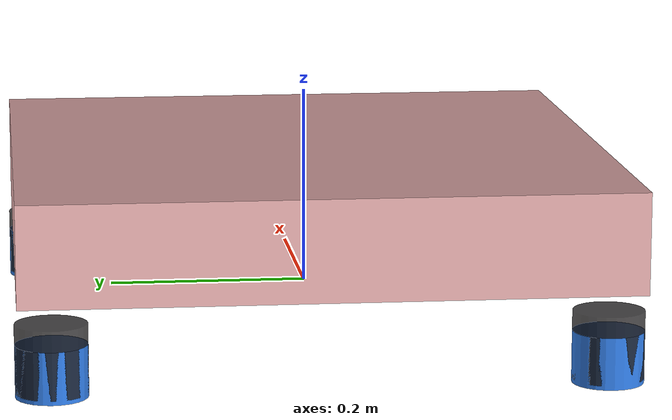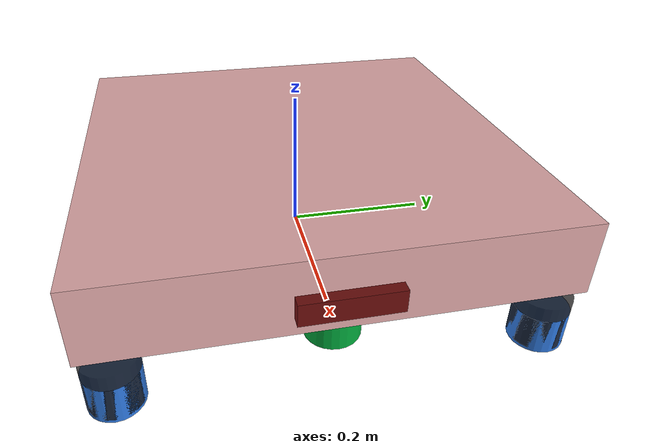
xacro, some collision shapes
<?xml version="1.0"?>
<robot name="abu_bot" xmlns:xacro="http://ros.org/wiki/xacro">
    <!-- ROBOT -->
    <xacro:include filename="$(find abu_description)/urdf/base.urdf.xacro" />
    <xacro:include filename="$(find abu_description)/urdf/properties.urdf.xacro" />
    <xacro:include filename="$(find abu_description)/urdf/sensors/imu.urdf.xacro" />
    <xacro:include filename="$(find abu_description)/urdf/robot_control.urdf.xacro" />
    <xacro:include filename="$(find abu_description)/urdf/sensors/depth_sensor.urdf.xacro" />
    <xacro:include filename="$(find abu_description)/urdf/sensors/generic_laser.urdf.xacro" />

    <xacro:base
        length="${base_length}"
        width="${base_width}"
        height="${base_height}"
        mass="${base_mass}"
        wheel_radius="${wheel_dir_radius}"
        wheel_pos_z="${wheel_pos_z}"
    />

    <xacro:imu/>

    <xacro:generic_laser>
        <xacro:insert_block name="laser_pose" />
    </xacro:generic_laser>

    <xacro:depth_sensor>
        <xacro:insert_block name="depth_sensor_pose" />
    </xacro:depth_sensor>

    <xacro:robot_controller/>

    <!-- DRIVE -->
    <xacro:include filename="$(find abu_description)/urdf/drive.urdf.xacro" />
    <xacro:include filename="$(find abu_description)/urdf/swerve_wheel/wheel.urdf.xacro" />
    <xacro:include filename="$(find abu_description)/urdf/swerve_wheel/wheel.transmission.xacro" />
    <xacro:include filename="$(find abu_description)/urdf/swerve_wheel/steering.transmission.xacro" />

    <xacro:swerve_wheel
        side="front_left"
        rot_radius="${wheel_rot_radius}"
        rot_width="${wheel_rot_width}"
        dir_radius="${wheel_dir_radius}"
        dir_width="${wheel_dir_width}"
        pos_x="${wheel_pos_x}"
        pos_y="${wheel_pos_y}"
        pos_z="${wheel_pos_z}"
        dir_pos_z="${wheel_dir_pos_z}"
        mass="${wheel_mass}"
    />

    <xacro:swerve_wheel
        side="front_right"
        rot_radius="${wheel_rot_radius}"
        rot_width="${wheel_rot_width}"
        dir_radius="${wheel_dir_radius}"
        dir_width="${wheel_dir_width}"
        pos_x="${wheel_pos_x}"
        pos_y="${-wheel_pos_y}"
        pos_z="${wheel_pos_z}"
        dir_pos_z="${wheel_dir_pos_z}"
        mass="${wheel_mass}"
    />
    <xacro:swerve_wheel
        side="rear_left"
        rot_radius="${wheel_rot_radius}"
        rot_width="${wheel_rot_width}"
        dir_radius="${wheel_dir_radius}"
        dir_width="${wheel_dir_width}"
        pos_x="${-wheel_pos_x}"
        pos_y="${wheel_pos_y}"
        pos_z="${wheel_pos_z}"
        dir_pos_z="${wheel_dir_pos_z}"
        mass="${wheel_mass}"
    />

    <xacro:swerve_wheel
        side="rear_right"
        rot_radius="${wheel_rot_radius}"
        rot_width="${wheel_rot_width}"
        dir_radius="${wheel_dir_radius}"
        dir_width="${wheel_dir_width}"
        pos_x="${-wheel_pos_x}"
        pos_y="${-wheel_pos_y}"
        pos_z="${wheel_pos_z}"
        dir_pos_z="${wheel_dir_pos_z}"
        mass="${wheel_mass}"
    />

    <ros2_control name="swerve_robot_gazebo_system" type="system">
        <hardware>
            <plugin>gazebo_ros2_control/GazeboSystem</plugin>
        </hardware>
        <xacro:wheel_transmission side="front_right" />
        <xacro:wheel_transmission side="front_left" />
        <xacro:wheel_transmission side="rear_left" />
        <xacro:wheel_transmission side="rear_right" />
        <xacro:steer_transmission side="front_right" />
        <xacro:steer_transmission side="front_left" />
        <xacro:steer_transmission side="rear_left" />
        <xacro:steer_transmission side="rear_right" />
    </ros2_control>

    <xacro:drive_controller/>

    <!-- TELESCOPE -->

    <!-- GRIPPER -->

</robot>

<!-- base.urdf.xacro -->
<robot xmlns:xacro="http://ros.org/wiki/xacro">
    <xacro:macro name="base" params="length width height mass wheel_radius wheel_pos_z">
        <link name="base_footprint"/>

        <link name="base_link">
        <visual>
            <origin xyz="0 0 0.01" rpy="0 0 ${-pi/2}"/>
            <geometry>
                <box size="${length} ${width} ${height}"/>
            </geometry>
            <material name="yellow">
            <color rgba="0.8784 0.6627 0.6627 1.0"/>
            </material>
        </visual>

        <collision>
            <origin xyz="0 0 0.1" rpy="0 0 ${-pi/2}"/>
            <geometry>
                <box size="${length} ${width} ${height}"/>
            </geometry>
        </collision>

        <inertial>
            <origin xyz="0 0 0" rpy="0 0 0"/>
            <mass value="${mass}"/>
            <inertia ixx="${(1/12) * mass * ((width  * width)  + (height * height))}" ixy="0.0" ixz="0.0"
                    iyy="${(1/12) * mass * ((length * length) + (height * height))}" iyz="0.0"
                    izz="${(1/12) * mass * ((length * length) + (width  * width))}"/>
        </inertial>
        </link>

        <gazebo reference="base_link">
        <visual>
            <material>
            <ambient>0.8392 0.6314 0.0 1.0</ambient>
            <diffuse>0.8392 0.6314 0.0 1.0</diffuse>
            <specular>0.99 0.99 0.99 1.0</specular>
            <emissive>0.0 0.0 0.0 0.0</emissive>
            </material>
        </visual>
        </gazebo>

        <joint name="base_to_footprint" type="fixed">
        <parent link="base_footprint"/>
        <child link="base_link"/>
        <origin xyz="0 0 ${wheel_radius - wheel_pos_z}" rpy="0 0 0"/>
        </joint>
    </xacro:macro>
</robot>

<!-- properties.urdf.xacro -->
<robot xmlns:xacro="http://ros.org/wiki/xacro">
    <xacro:property name="base_length" value="0.6" />
    <xacro:property name="base_width" value="0.6" />
    <xacro:property name="base_height" value="0.1" />
    <xacro:property name="base_mass" value="10" />

    <xacro:property name="wheel_dir_radius" value="0.035" />
    <xacro:property name="wheel_dir_width" value="0.051" />
    <xacro:property name="wheel_rot_radius" value="0.035" />
    <xacro:property name="wheel_rot_width" value="0.067" />
    <xacro:property name="wheel_pos_x" value="0.2675" />
    <xacro:property name="wheel_pos_y" value="0.2675" />
    <xacro:property name="wheel_pos_z" value="-0.05" />
    <xacro:property name="wheel_dir_pos_z" value="-0.056" />
    <xacro:property name="wheel_mass" value="0.5" />
    <xacro:property name="wheel_torque" value="20" />

    <xacro:property name="silder_1_length" value="0.505" />
    <xacro:property name="silder_1_width" value="0.035" />
    <xacro:property name="silder_1_height" value="0.035" />
    <xacro:property name="silder_1_pos_x" value="-0.3" />
    <xacro:property name="silder_1_pos_y" value="0" />
    <xacro:property name="silder_1_pos_z" value="0.04" />
    <xacro:property name="silder_1_mass" value="0.1" />
    <xacro:property name="silder_2_length" value="0.035" />
    <xacro:property name="silder_2_width" value="0.03" />
    <xacro:property name="silder_2_height" value="0.03" />
    <xacro:property name="silder_2_pos_x" value="0.24" />
    <xacro:property name="silder_2_pos_y" value="0" />
    <xacro:property name="silder_2_pos_z" value="0" />
    <xacro:property name="silder_2_mass" value="0.1" />
    <xacro:property name="silder_wrist_length" value="0.11" />
    <xacro:property name="silder_wrist_width" value="0.085" />
    <xacro:property name="silder_wrist_height" value="0.085" />
    <xacro:property name="silder_wrist_pos_x" value="0.25" />
    <xacro:property name="silder_wrist_pos_y" value="0" />
    <xacro:property name="silder_wrist_pos_z" value="0" />
    <xacro:property name="silder_wrist_mass" value="0.1" />
    <xacro:property name="silder_hand_length" value="0.22" />
    <xacro:property name="silder_hand_width" value="0.22" />
    <xacro:property name="silder_hand_height" value="0.125" />
    <xacro:property name="silder_hand_pos_x" value="0.004" />
    <xacro:property name="silder_hand_pos_y" value="-0.022" />
    <xacro:property name="silder_hand_pos_z" value="0.03" />
    <xacro:property name="silder_hand_mass" value="0.1" />

    <xacro:property name="laser_pose">
        <origin xyz="0.232 0 -0.055" rpy="0 0 0"/>
    </xacro:property>

    <xacro:property name="depth_sensor_pose">
        <origin xyz="0.3 0 0" rpy="0 0 0"/>
    </xacro:property>
</robot>

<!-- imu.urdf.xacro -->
<robot xmlns:xacro="http://ros.org/wiki/xacro">
    <xacro:macro name="imu">
        <link name="imu_link"/>

        <joint name="imu_to_base_link" type="fixed">
        <parent link="base_link"/>
        <child link="imu_link"/>
        <origin xyz="0 0 0" rpy="0 0 0"/>
        </joint>

        <gazebo reference="imu_link">
        <gravity>true</gravity>
        <sensor name="imu_sensor" type="imu">
        <always_on>true</always_on>
        <update_rate>20</update_rate>
        <visualize>true</visualize>
        <topic>__default_topic__</topic>
        <plugin filename="libgazebo_ros_imu_sensor.so" name="imu_plugin">
            <ros>
                <remapping>~/out:=imu/data</remapping>
            </ros>
            <topicName>imu/data</topicName>
            <bodyName>imu_link</bodyName>
            <updateRateHZ>10.0</updateRateHZ>
            <gaussianNoise>0.0</gaussianNoise>
            <xyzOffset>0 0 0</xyzOffset>
            <rpyOffset>0 0 0</rpyOffset>
            <frameName>imu_link</frameName>
            <initialOrientationAsReference>false</initialOrientationAsReference>
        </plugin>
        <pose>0 0 0 0 0 0</pose>
        </sensor>
        </gazebo>
    </xacro:macro>
</robot>

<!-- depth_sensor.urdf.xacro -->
<robot xmlns:xacro="http://ros.org/wiki/xacro">
    <xacro:property name="M_PI" value="3.1415926535897931" />
    <xacro:macro name="depth_sensor" params="*origin">
        <link name="camera_link">
        <visual>
            <origin xyz="0 0 0" rpy="0 0 0"/>
            <geometry>
            <box size="0.030 0.124 0.030"/>
            </geometry>
            <material name="red">
            <color rgba="0.416 0.051 0.047 1.0"/>
            </material>
        </visual>

        <collision>
            <origin xyz="0 0 0" rpy="0 0 0"/>
            <geometry>
            <box size="0.030 0.124 0.030"/>
            </geometry>
        </collision>

        <inertial>
            <origin xyz="0 0 0" rpy="0 0 0"/>
            <mass value="0.135"/>
            <inertia ixx="${(1/12) * 0.135 * ((0.124  * 0.124)  + (0.030 * 0.030))}" ixy="0.0" ixz="0.0"
                    iyy="${(1/12) * 0.135 * ((0.030 * 0.030) + (0.030 * 0.030))}" iyz="0.0"
                    izz="${(1/12) * 0.135 * ((0.030 * 0.030) + (0.124  * 0.124))}"/>
        </inertial>
        </link>

        <gazebo reference="camera_link">
        <visual>
            <material>
            <ambient>0.416 0.051 0.047 1.0</ambient>
            <diffuse>0.416 0.051 0.047 1.0</diffuse>
            <specular>0.416 0.051 0.047 1.0</specular>
            <emissive>0.416 0.051 0.047 1.0</emissive>
            </material>
        </visual>
        </gazebo>rgb(213,28,40)

        <joint name="camera_to_base_link" type="fixed">
        <parent link="base_link"/>
        <child link="camera_link"/>
        <xacro:insert_block name="origin" />
        </joint>

        <link name="camera_depth_link"/>
        <joint name="camera_depth_joint" type="fixed">
        <origin xyz="0 0 0" rpy="-1.57 0 -1.57"/>
        <parent link="camera_link"/>
        <child link="camera_depth_link"/>
        </joint>

        <!-- https://github.com/ros-simulation/gazebo_ros_pkgs/wiki/ROS-2-Migration:-Camera#gazebo_ros_camera -->
        <gazebo reference="camera_link">
        <sensor name="camera" type="depth">
            <always_on>true</always_on>
            <update_rate>30.0</update_rate>
            <camera name="camera">
            <horizontal_fov>1.50098</horizontal_fov>
            <image>
                <width>640</width>
                <height>480</height>
                <format>R8G8B8</format>
            </image>
            </camera>
            <plugin name="camera_controller" filename="libgazebo_ros_camera.so">
            <ros>
                <remapping>/camera/camera_info:=/camera/color/camera_info</remapping>
                <remapping>/camera/image_raw:=/camera/color/image_raw</remapping>
                <remapping>/camera/points:=/camera/depth/color/points</remapping>
                <remapping>/camera/depth/image_raw:=/camera/depth/image_rect_raw</remapping>
            </ros>
            <min_depth>0.015</min_depth>
            <max_depth>3.0</max_depth>
            <hack_baseline>0.07</hack_baseline>
            <frame_name>camera_depth_link</frame_name>
            <distortion_k1>0.00000001</distortion_k1>
            <distortion_k2>0.00000001</distortion_k2>
            <distortion_k3>0.00000001</distortion_k3>
            <distortion_t1>0.00000001</distortion_t1>
            <distortion_t2>0.00000001</distortion_t2>
            </plugin>
        </sensor>

        </gazebo>
    </xacro:macro>
</robot>

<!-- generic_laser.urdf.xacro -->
<robot xmlns:xacro="http://ros.org/wiki/xacro">
    <xacro:include filename="$(find abu_description)/urdf/sensors/laser.urdf.xacro" />

    <xacro:macro name="generic_laser" params="*origin">
        <xacro:laser
        update_rate="10"
        ray_count="360"
        min_angle="-3.1416"
        max_angle="3.1416"
        min_range="0.08"
        max_range="12.0"
        frame_id="laser"
        topic_name="scan"
        >
        <xacro:insert_block name="origin" />
        </xacro:laser>
    </xacro:macro>

    <xacro:macro name="generic_base_laser" params="*origin">
        <xacro:laser
        update_rate="10"
        ray_count="360"
        min_angle="-3.1416"
        max_angle="3.1416"
        min_range="0.21"
        max_range="5.5"
        frame_id="base_laser"
        topic_name="base/scan"
        >
        <xacro:insert_block name="origin" />
        </xacro:laser>
    </xacro:macro>
</robot>

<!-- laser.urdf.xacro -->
<robot xmlns:xacro="http://ros.org/wiki/xacro">
    <xacro:property name="M_PI" value="3.1415926535897931" />
    <xacro:macro name="laser" params="*origin update_rate ray_count min_angle max_angle min_range max_range frame_id topic_name">
        <link name="${frame_id}">
        <visual>
            <origin xyz="0 0 -0.01" rpy="0 0 ${pi/2}"/>
            <geometry>
                <mesh filename="file://$(find abu_description)/urdf/model/rplidar.dae" scale="1 1 1"/>
            </geometry>
            <material name="green">
                <color rgba="0.003 0.639 0.223 1.0"/>
            </material>
        </visual>
        <collision>
            <origin xyz="0 0 -0.025" rpy="0 0 0"/>
            <geometry>
            <cylinder radius="0.0375" length="0.05"/>
            </geometry>
        </collision>

        <inertial>
            <origin xyz="0 0 0" rpy="0 0 0"/>
            <mass value="0.1"/>
            <inertia ixx="${(2/5) * 0.1 * (0.0375 * 0.0375)}" ixy="0" ixz="0"
                    iyy="${(2/5) * 0.1 * (0.0375 * 0.0375)}" iyz="0"
                    izz="${(2/5) * 0.1 * (0.0375 * 0.0375)}" />
        </inertial>
        </link>

        <gazebo reference="${frame_id}">
        <visual>
            <material>
            <ambient>0.003 0.639 0.223 1.0</ambient>
            <diffuse>0.003 0.639 0.223 1.0</diffuse>
            <specular>0.003 0.639 0.223 1.0</specular>
            <emissive>0.0 0.0 0.0 0.0</emissive>
            </material>
        </visual>
        </gazebo>

        <joint name="${frame_id}_to_base_link" type="fixed">
        <parent link="base_link"/>
        <child link="${frame_id}"/>
        <xacro:insert_block name="origin" />
        </joint>

        <gazebo reference="${frame_id}">
        <sensor type="ray" name="${frame_id}_head_hokuyo_sensor">
            <always_on>true</always_on>
            <update_rate>${update_rate}</update_rate>
            <pose>0 0 0 0 0 0</pose>
            <visualize>false</visualize>
            <ray>
            <scan>
                <horizontal>
                <samples>${ray_count}</samples>
                <resolution>1</resolution>
                <min_angle>${min_angle}</min_angle>
                <max_angle>${max_angle}</max_angle>
                </horizontal>
            </scan>
            <range>
                <min>${min_range}</min>
                <max>${max_range}</max>
                <resolution>0.01</resolution>
            </range>
            </ray>
            <plugin name="${frame_id}_gazebo_ros_head_hokuyo_controller" filename="libgazebo_ros_ray_sensor.so">
            <ros>
                <remapping>~/out:=${topic_name}</remapping>
            </ros>
            <output_type>sensor_msgs/LaserScan</output_type>
            <alwaysOn>true</alwaysOn>
            <updateRate>${update_rate}</updateRate>
            <topicName>${topic_name}</topicName>
            <frame_name>${frame_id}</frame_name>
            <output_type>sensor_msgs/LaserScan</output_type>
            </plugin>
        </sensor>
        </gazebo>
    </xacro:macro>
</robot>

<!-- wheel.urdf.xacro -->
<robot xmlns:xacro="http://ros.org/wiki/xacro">
    <xacro:include filename="$(find abu_description)/urdf/swerve_wheel/dir_wheel.urdf.xacro" />
    <xacro:include filename="$(find abu_description)/urdf/swerve_wheel/steering.urdf.xacro" />

    <xacro:macro name="swerve_wheel" params="side rot_radius rot_width dir_radius dir_width pos_x pos_y pos_z dir_pos_z mass">
        <xacro:steering
            side="${side}"
            radius="${rot_radius}"
            width="${rot_width}"
            pos_x="${pos_x}"
            pos_y="${pos_y}"
            pos_z="${pos_z}"
            mass="${mass}"
        />
        <xacro:direction_wheel
            side="${side}"
            radius="${dir_radius}"
            width="${dir_width}"
            pos_z="${dir_pos_z}"
            mass="${mass}"
        />

    </xacro:macro>
</robot>

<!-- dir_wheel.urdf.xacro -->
<robot xmlns:xacro="http://ros.org/wiki/xacro">
    <xacro:macro name="direction_wheel" params="side radius width pos_z mass">
        <link name="${side}_dir_wheel_link">
        <visual>
            <origin xyz="0 0 0" rpy="0 0 0"/>
            <geometry>
                <cylinder radius="${radius}" length="${width}"/>
            </geometry>
            <material name="blue">
                <color rgba="0.1764 0.4588 0.8509 1.0"/>
            </material>
        </visual>
        <collision>
            <origin xyz="0 0 0" rpy="${pi/2} 0 0"/>
            <geometry>
                <cylinder radius="${radius}" length="${width}"/>
            </geometry>
        </collision>

        <inertial>
            <origin xyz="0 0 0" rpy="0 0 0"/>
            <mass value="${mass}"/>
            <inertia ixx="${(2/5) * mass * (radius * radius)}" ixy="0" ixz="0"
                    iyy="${(2/5) * mass * (radius * radius)}" iyz="0"
                    izz="${(2/5) * mass * (radius * radius)}" />
        </inertial>
        </link>

        <gazebo reference="${side}_dir_wheel_link">
            <mu1>0.01</mu1>
            <mu2>0.01</mu2>
        </gazebo>

        <gazebo reference="${side}_dir_wheel_link">
        <visual>
            <material>
            <ambient>0.1764 0.4588 0.8509 1.0</ambient>
            <diffuse>0.1764 0.4588 0.8509 1.0</diffuse>
            <specular>0.1764 0.4588 0.8509 1.0</specular>
            <emissive>0.0 0.0 0.0 0.0</emissive>
            </material>
        </visual>
        </gazebo>
        <joint name="${side}_dir_wheel_joint" type="continuous">
        <axis xyz="0 1 0" />
        <parent link="${side}_steering_link"/>
        <child link="${side}_dir_wheel_link"/>
        <origin xyz="0 0 ${pos_z}" rpy="0 0 0"/>
        </joint>
    </xacro:macro>
</robot>

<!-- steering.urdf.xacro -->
<robot xmlns:xacro="http://ros.org/wiki/xacro">
    <xacro:macro name="steering" params="side radius width pos_x pos_y pos_z mass">
        <link name="${side}_steering_link">
        <visual>
            <origin xyz="0 0 -0.044" rpy="0 0 0"/>
            <geometry>
                <cylinder radius="${radius}" length="${width}"/>
            </geometry>
            <material name="gray">
                <color rgba="0.123 0.114 0.119 0.8"/>
            </material>
        </visual>
        <collision>
            <origin xyz="0 0 -0.0335" rpy="0 0 0"/>
            <geometry>
                <cylinder radius="${radius}" length="${width}"/>
            </geometry>
        </collision>

        <inertial>
            <origin xyz="0 0 0" rpy="0 0 0"/>
            <mass value="${mass}"/>
            <inertia ixx="${(2/5) * mass * (radius * radius)}" ixy="0" ixz="0"
                    iyy="${(2/5) * mass * (radius * radius)}" iyz="0"
                    izz="${(2/5) * mass * (radius * radius)}" />
        </inertial>
        </link>

        <gazebo reference="${side}_steering_link">
            <mu1>0.01</mu1>
            <mu2>0.01</mu2>
        </gazebo>

        <gazebo reference="${side}_steering_link">
        <visual>
            <material>
            <ambient>0.123 0.114 0.119 0.8</ambient>
            <diffuse>0.123 0.114 0.119 0.8</diffuse>
            <specular>0.123 0.114 0.119 0.8</specular>
            <emissive>0.0 0.0 0.0 0.0</emissive>
            </material>
        </visual>
        </gazebo>
        <joint name="${side}_steering_joint" type="revolute">
        <axis xyz="0 0 1" />
        <parent link="base_link"/>
        <child link="${side}_steering_link"/>
        <origin xyz="${pos_x} ${pos_y} ${pos_z}" rpy="0 0 0"/>
        <limit lower="-${pi}" upper="${pi}" effort="-1" velocity="-1"/>
        </joint>
    </xacro:macro>
</robot>
